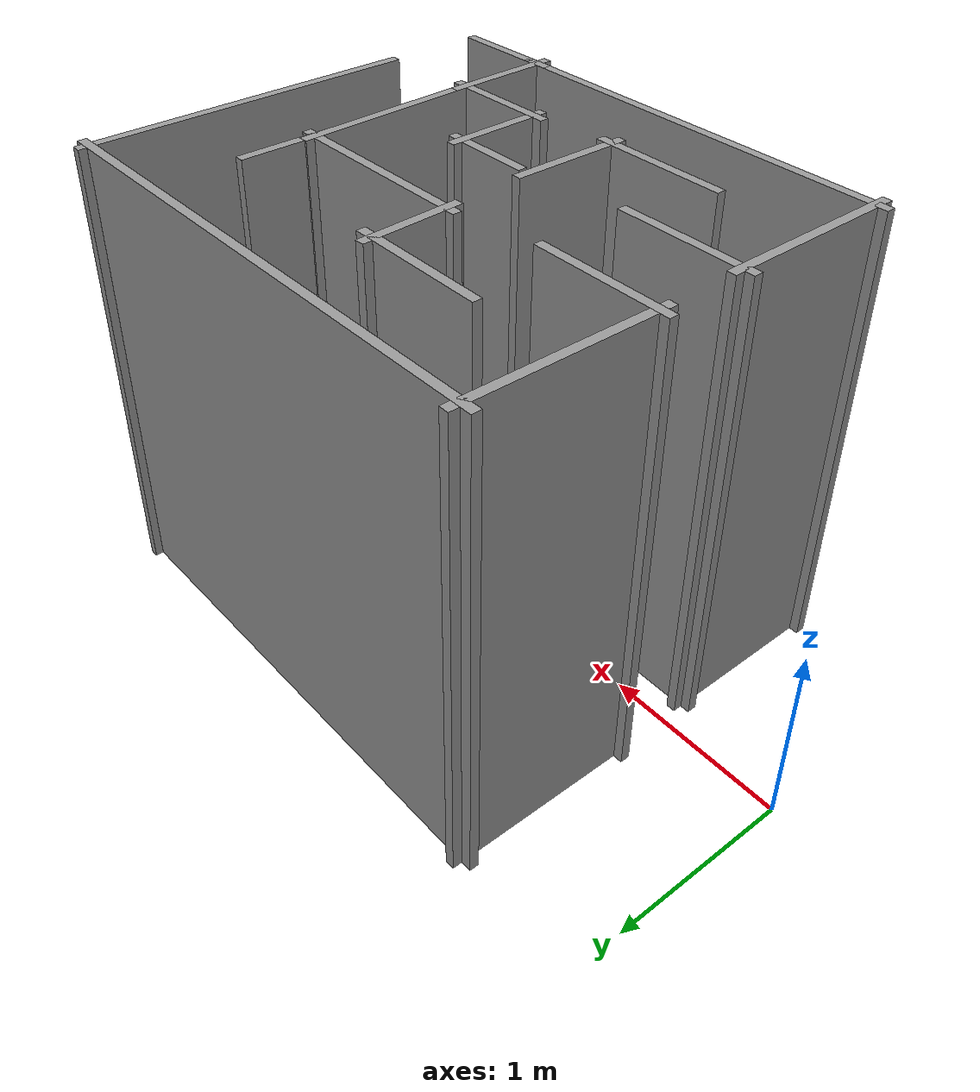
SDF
<?xml version='1.0'?>
<sdf version='1.7'>
  <model name='Labyrinthe'>
    <pose>1.75358 0.131929 0 0 -0 0</pose>
    <link name='Wall_44'>
      <collision name='Wall_44_Collision'>
        <geometry>
          <box>
            <size>0.75 0.05 2.5</size>
          </box>
        </geometry>
        <pose>0 0 1.25 0 -0 0</pose>
      </collision>
      <visual name='Wall_44_Visual'>
        <pose>0 0 1.25 0 -0 0</pose>
        <geometry>
          <box>
            <size>0.75 0.05 2.5</size>
          </box>
        </geometry>
        <material>
          <script>
            <uri>file://media/materials/scripts/gazebo.material</uri>
            <name>Gazebo/Grey</name>
          </script>
          <ambient>1 1 1 1</ambient>
        </material>
        <meta>
          <layer>0</layer>
        </meta>
      </visual>
      <pose>-0.18283 0.672913 0 0 -0 0</pose>
    </link>
    <link name='Wall_45'>
      <collision name='Wall_45_Collision'>
        <geometry>
          <box>
            <size>0.546517 0.05 2.5</size>
          </box>
        </geometry>
        <pose>0 0 1.25 0 -0 0</pose>
      </collision>
      <visual name='Wall_45_Visual'>
        <pose>0 0 1.25 0 -0 0</pose>
        <geometry>
          <box>
            <size>0.546517 0.05 2.5</size>
          </box>
        </geometry>
        <material>
          <script>
            <uri>file://media/materials/scripts/gazebo.material</uri>
            <name>Gazebo/Grey</name>
          </script>
          <ambient>1 1 1 1</ambient>
        </material>
        <meta>
          <layer>0</layer>
        </meta>
      </visual>
      <pose>0.113882 0.4749 0 0 -0 -1.52103</pose>
    </link>
    <link name='Wall_49'>
      <collision name='Wall_49_Collision'>
        <geometry>
          <box>
            <size>1.12495 0.05 2.5</size>
          </box>
        </geometry>
        <pose>0 0 1.25 0 -0 0</pose>
      </collision>
      <visual name='Wall_49_Visual'>
        <pose>0 0 1.25 0 -0 0</pose>
        <geometry>
          <box>
            <size>1.12495 0.05 2.5</size>
          </box>
        </geometry>
        <material>
          <script>
            <uri>file://media/materials/scripts/gazebo.material</uri>
            <name>Gazebo/Grey</name>
          </script>
          <ambient>1 1 1 1</ambient>
        </material>
        <meta>
          <layer>0</layer>
        </meta>
      </visual>
      <pose>0.611209 0.280174 0 0 -0 0.006744</pose>
    </link>
    <link name='Wall_50'>
      <collision name='Wall_50_Collision'>
        <geometry>
          <box>
            <size>1.09263 0.05 2.5</size>
          </box>
        </geometry>
        <pose>0 0 1.25 0 -0 0</pose>
      </collision>
      <visual name='Wall_50_Visual'>
        <pose>0 0 1.25 0 -0 0</pose>
        <geometry>
          <box>
            <size>1.09263 0.05 2.5</size>
          </box>
        </geometry>
        <material>
          <script>
            <uri>file://media/materials/scripts/gazebo.material</uri>
            <name>Gazebo/Grey</name>
          </script>
          <ambient>1 1 1 1</ambient>
        </material>
        <meta>
          <layer>0</layer>
        </meta>
      </visual>
      <pose>1.11511 -0.187564 0 0 -0 -1.53591</pose>
    </link>
    <link name='Wall_51'>
      <collision name='Wall_51_Collision'>
        <geometry>
          <box>
            <size>0.651272 0.05 2.5</size>
          </box>
        </geometry>
        <pose>0 0 1.25 0 -0 0</pose>
      </collision>
      <visual name='Wall_51_Visual'>
        <pose>0 0 1.25 0 -0 0</pose>
        <geometry>
          <box>
            <size>0.651272 0.05 2.5</size>
          </box>
        </geometry>
        <material>
          <script>
            <uri>file://media/materials/scripts/gazebo.material</uri>
            <name>Gazebo/Grey</name>
          </script>
          <ambient>1 1 1 1</ambient>
        </material>
        <meta>
          <layer>0</layer>
        </meta>
      </visual>
      <pose>0.874359 -0.668453 0 0 -0 -3.12847</pose>
    </link>
    <link name='Wall_52'>
      <collision name='Wall_52_Collision'>
        <geometry>
          <box>
            <size>0.592101 0.05 2.5</size>
          </box>
        </geometry>
        <pose>0 0 1.25 0 -0 0</pose>
      </collision>
      <visual name='Wall_52_Visual'>
        <pose>0 0 1.25 0 -0 0</pose>
        <geometry>
          <box>
            <size>0.592101 0.05 2.5</size>
          </box>
        </geometry>
        <material>
          <script>
            <uri>file://media/materials/scripts/gazebo.material</uri>
            <name>Gazebo/Grey</name>
          </script>
          <ambient>1 1 1 1</ambient>
        </material>
        <meta>
          <layer>0</layer>
        </meta>
      </visual>
      <pose>0.627033 -0.444139 0 0 -0 1.58567</pose>
    </link>
    <link name='Wall_53'>
      <collision name='Wall_53_Collision'>
        <geometry>
          <box>
            <size>0.5 0.05 2.5</size>
          </box>
        </geometry>
        <pose>0 0 1.25 0 -0 0</pose>
      </collision>
      <visual name='Wall_53_Visual'>
        <pose>0 0 1.25 0 -0 0</pose>
        <geometry>
          <box>
            <size>0.5 0.05 2.5</size>
          </box>
        </geometry>
        <material>
          <script>
            <uri>file://media/materials/scripts/gazebo.material</uri>
            <name>Gazebo/Grey</name>
          </script>
          <ambient>1 1 1 1</ambient>
        </material>
        <meta>
          <layer>0</layer>
        </meta>
      </visual>
      <pose>0.448745 -0.223113 0 0 -0 3.14159</pose>
    </link>
    <link name='Wall_56'>
      <collision name='Wall_56_Collision'>
        <geometry>
          <box>
            <size>0.657543 0.05 2.5</size>
          </box>
        </geometry>
        <pose>0 0 1.25 0 -0 0</pose>
      </collision>
      <visual name='Wall_56_Visual'>
        <pose>0 0 1.25 0 -0 0</pose>
        <geometry>
          <box>
            <size>0.657543 0.05 2.5</size>
          </box>
        </geometry>
        <material>
          <script>
            <uri>file://media/materials/scripts/gazebo.material</uri>
            <name>Gazebo/Grey</name>
          </script>
          <ambient>1 1 1 1</ambient>
        </material>
        <meta>
          <layer>0</layer>
        </meta>
      </visual>
      <pose>0.15369 -0.474554 0 0 -0 1.56044</pose>
    </link>
    <link name='Wall_58'>
      <collision name='Wall_58_Collision'>
        <geometry>
          <box>
            <size>0.75 0.05 2.5</size>
          </box>
        </geometry>
        <pose>0 0 1.25 0 -0 0</pose>
      </collision>
      <visual name='Wall_58_Visual'>
        <pose>0 0 1.25 0 -0 0</pose>
        <geometry>
          <box>
            <size>0.75 0.05 2.5</size>
          </box>
        </geometry>
        <material>
          <script>
            <uri>file://media/materials/scripts/gazebo.material</uri>
            <name>Gazebo/Grey</name>
          </script>
          <ambient>1 1 1 1</ambient>
        </material>
        <meta>
          <layer>0</layer>
        </meta>
      </visual>
      <pose>-0.148938 -0.734887 0 0 -0 3.14159</pose>
    </link>
    <link name='Wall_62'>
      <collision name='Wall_62_Collision'>
        <geometry>
          <box>
            <size>0.5 0.05 2.5</size>
          </box>
        </geometry>
        <pose>0 0 1.25 0 -0 0</pose>
      </collision>
      <visual name='Wall_62_Visual'>
        <pose>0 0 1.25 0 -0 0</pose>
        <geometry>
          <box>
            <size>0.5 0.05 2.5</size>
          </box>
        </geometry>
        <material>
          <script>
            <uri>file://media/materials/scripts/gazebo.material</uri>
            <name>Gazebo/Grey</name>
          </script>
          <ambient>1 1 1 1</ambient>
        </material>
        <meta>
          <layer>0</layer>
        </meta>
      </visual>
      <pose>1.10525 0.451887 0 0 -0 1.5708</pose>
    </link>
    <link name='Wall_64'>
      <collision name='Wall_64_Collision'>
        <geometry>
          <box>
            <size>0.648486 0.05 2.5</size>
          </box>
        </geometry>
        <pose>0 0 1.25 0 -0 0</pose>
      </collision>
      <visual name='Wall_64_Visual'>
        <pose>0 0 1.25 0 -0 0</pose>
        <geometry>
          <box>
            <size>0.648486 0.05 2.5</size>
          </box>
        </geometry>
        <material>
          <script>
            <uri>file://media/materials/scripts/gazebo.material</uri>
            <name>Gazebo/Grey</name>
          </script>
          <ambient>1 1 1 1</ambient>
        </material>
        <meta>
          <layer>0</layer>
        </meta>
      </visual>
      <pose>1.13467 -0.907814 0 0 -0 -1.55828</pose>
    </link>
    <link name='Wall_66'>
      <collision name='Wall_66_Collision'>
        <geometry>
          <box>
            <size>1.84864 0.05 2.5</size>
          </box>
        </geometry>
        <pose>0 0 1.25 0 -0 0</pose>
      </collision>
      <visual name='Wall_66_Visual'>
        <pose>0 0 1.25 0 -0 0</pose>
        <geometry>
          <box>
            <size>1.84864 0.05 2.5</size>
          </box>
        </geometry>
        <material>
          <script>
            <uri>file://media/materials/scripts/gazebo.material</uri>
            <name>Gazebo/Grey</name>
          </script>
          <ambient>1 1 1 1</ambient>
        </material>
        <meta>
          <layer>0</layer>
        </meta>
      </visual>
      <pose>1.67475 0.301653 0 0 -0 -1.57467</pose>
    </link>
    <link name='Wall_68'>
      <collision name='Wall_68_Collision'>
        <geometry>
          <box>
            <size>0.616883 0.05 2.5</size>
          </box>
        </geometry>
        <pose>0 0 1.25 0 -0 0</pose>
      </collision>
      <visual name='Wall_68_Visual'>
        <pose>0 0 1.25 0 -0 0</pose>
        <geometry>
          <box>
            <size>0.616883 0.05 2.5</size>
          </box>
        </geometry>
        <material>
          <script>
            <uri>file://media/materials/scripts/gazebo.material</uri>
            <name>Gazebo/Grey</name>
          </script>
          <ambient>1 1 1 1</ambient>
        </material>
        <meta>
          <layer>0</layer>
        </meta>
      </visual>
      <pose>1.37121 -1.15375 0 0 -0 0.014084</pose>
    </link>
    <link name='Wall_75'>
      <collision name='Wall_75_Collision'>
        <geometry>
          <box>
            <size>2.30937 0.05 2.5</size>
          </box>
        </geometry>
        <pose>0 0 1.25 0 -0 0</pose>
      </collision>
      <visual name='Wall_75_Visual'>
        <pose>0 0 1.25 0 -0 0</pose>
        <geometry>
          <box>
            <size>2.30937 0.05 2.5</size>
          </box>
        </geometry>
        <material>
          <script>
            <uri>file://media/materials/scripts/gazebo.material</uri>
            <name>Gazebo/Grey</name>
          </script>
          <ambient>1 1 1 1</ambient>
        </material>
        <meta>
          <layer>0</layer>
        </meta>
      </visual>
      <pose>0.058105 -1.15698 0 0 -0 -5e-05</pose>
    </link>
    <link name='Wall_81'>
      <collision name='Wall_81_Collision'>
        <geometry>
          <box>
            <size>2.86185 0.05 2.5</size>
          </box>
        </geometry>
        <pose>0 0 1.25 0 -0 0</pose>
      </collision>
      <visual name='Wall_81_Visual'>
        <pose>0 0 1.25 0 -0 0</pose>
        <geometry>
          <box>
            <size>2.86185 0.05 2.5</size>
          </box>
        </geometry>
        <material>
          <script>
            <uri>file://media/materials/scripts/gazebo.material</uri>
            <name>Gazebo/Grey</name>
          </script>
          <ambient>1 1 1 1</ambient>
        </material>
        <meta>
          <layer>0</layer>
        </meta>
      </visual>
      <pose>0.322147 1.14768 0 0 -0 -3.13432</pose>
    </link>
    <link name='Wall_82'>
      <collision name='Wall_82_Collision'>
        <geometry>
          <box>
            <size>1.09883 0.05 2.5</size>
          </box>
        </geometry>
        <pose>0 0 1.25 0 -0 0</pose>
      </collision>
      <visual name='Wall_82_Visual'>
        <pose>0 0 1.25 0 -0 0</pose>
        <geometry>
          <box>
            <size>1.09883 0.05 2.5</size>
          </box>
        </geometry>
        <material>
          <script>
            <uri>file://media/materials/scripts/gazebo.material</uri>
            <name>Gazebo/Grey</name>
          </script>
          <ambient>1 1 1 1</ambient>
        </material>
        <meta>
          <layer>0</layer>
        </meta>
      </visual>
      <pose>-1.03045 0.663503 0 0 -0 -1.57773</pose>
    </link>
    <link name='Wall_83'>
      <collision name='Wall_83_Collision'>
        <geometry>
          <box>
            <size>0.75 0.05 2.5</size>
          </box>
        </geometry>
        <pose>0 0 1.25 0 -0 0</pose>
      </collision>
      <visual name='Wall_83_Visual'>
        <pose>0 0 1.25 0 -0 0</pose>
        <geometry>
          <box>
            <size>0.75 0.05 2.5</size>
          </box>
        </geometry>
        <material>
          <script>
            <uri>file://media/materials/scripts/gazebo.material</uri>
            <name>Gazebo/Grey</name>
          </script>
          <ambient>1 1 1 1</ambient>
        </material>
        <meta>
          <layer>0</layer>
        </meta>
      </visual>
      <pose>-0.733742 0.189189 0 0 -0 0</pose>
    </link>
    <link name='Wall_86'>
      <collision name='Wall_86_Collision'>
        <geometry>
          <box>
            <size>1.01141 0.05 2.5</size>
          </box>
        </geometry>
        <pose>0 0 1.25 0 -0 0</pose>
      </collision>
      <visual name='Wall_86_Visual'>
        <pose>0 0 1.25 0 -0 0</pose>
        <geometry>
          <box>
            <size>1.01141 0.05 2.5</size>
          </box>
        </geometry>
        <material>
          <script>
            <uri>file://media/materials/scripts/gazebo.material</uri>
            <name>Gazebo/Grey</name>
          </script>
          <ambient>1 1 1 1</ambient>
        </material>
        <meta>
          <layer>0</layer>
        </meta>
      </visual>
      <pose>-1.02351 -0.72631 0 0 -0 1.57528</pose>
    </link>
    <link name='Wall_88'>
      <collision name='Wall_88_Collision'>
        <geometry>
          <box>
            <size>0.75 0.05 2.5</size>
          </box>
        </geometry>
        <pose>0 0 1.25 0 -0 0</pose>
      </collision>
      <visual name='Wall_88_Visual'>
        <pose>0 0 1.25 0 -0 0</pose>
        <geometry>
          <box>
            <size>0.75 0.05 2.5</size>
          </box>
        </geometry>
        <material>
          <script>
            <uri>file://media/materials/scripts/gazebo.material</uri>
            <name>Gazebo/Grey</name>
          </script>
          <ambient>1 1 1 1</ambient>
        </material>
        <meta>
          <layer>0</layer>
        </meta>
      </visual>
      <pose>-0.725438 -0.295691 0 0 -0 0</pose>
    </link>
    <static>1</static>
  </model>
</sdf>
